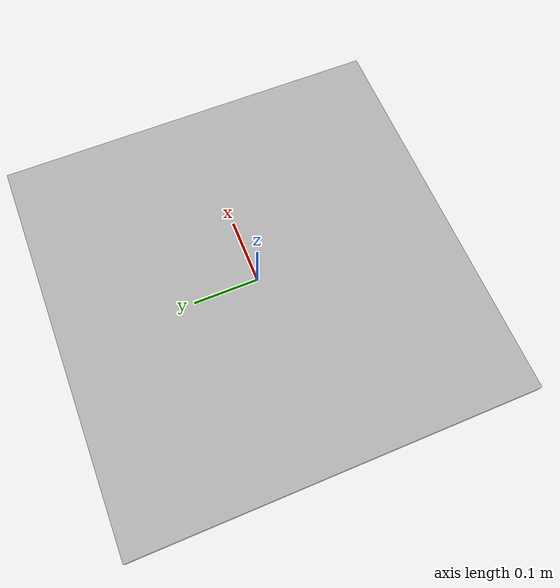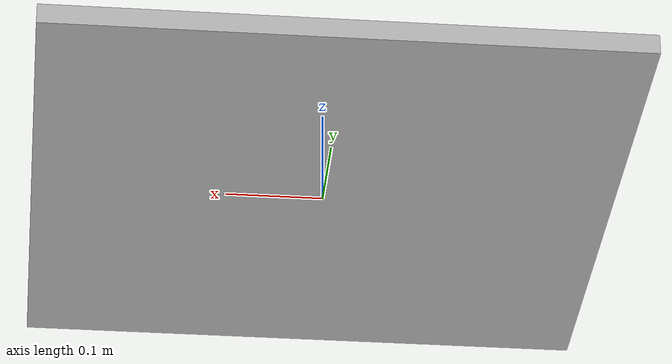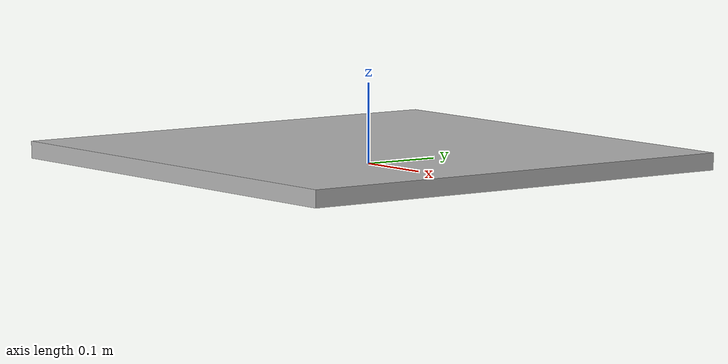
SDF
<?xml version='1.0'?>
<sdf version="1.9">
  <model name="wamv_apriltag_array">
    <pose>0 0 0.01 0 0 0</pose>
    <static>true</static>
    <link name="link">
      <inertial>
        <mass>10.0</mass>
        <inertia> <!-- inertias are tricky to compute -->
          <!-- http://gazebosim.org/tutorials?tut=inertia&cat=build_robot -->
          <ixx>0.1</ixx>       <!-- for a box: ixx = 0.083 * mass * (y*y + z*z) -->
          <ixy>0.0</ixy>         <!-- for a box: ixy = 0 -->
          <ixz>0.0</ixz>         <!-- for a box: ixz = 0 -->
          <iyy>0.1</iyy>       <!-- for a box: iyy = 0.083 * mass * (x*x + z*z) -->
          <iyz>0.0</iyz>         <!-- for a box: iyz = 0 -->
          <izz>0.1</izz>       <!-- for a box: izz = 0.083 * mass * (x*x + y*y) -->
        </inertia>
      </inertial>
      <collision name="collision">
        <geometry>
          <box>
            <size>0.6 0.6 0.02</size>
          </box>
        </geometry>
      </collision>
      <visual name="visual">
        <geometry>
          <mesh>
            <uri>model://wamv_apriltag_array/meshes/wamv_apriltag_array.dae</uri>
            <scale>1 1 1</scale>
          </mesh>
        </geometry>
      </visual>
    </link>
  </model>
</sdf>
